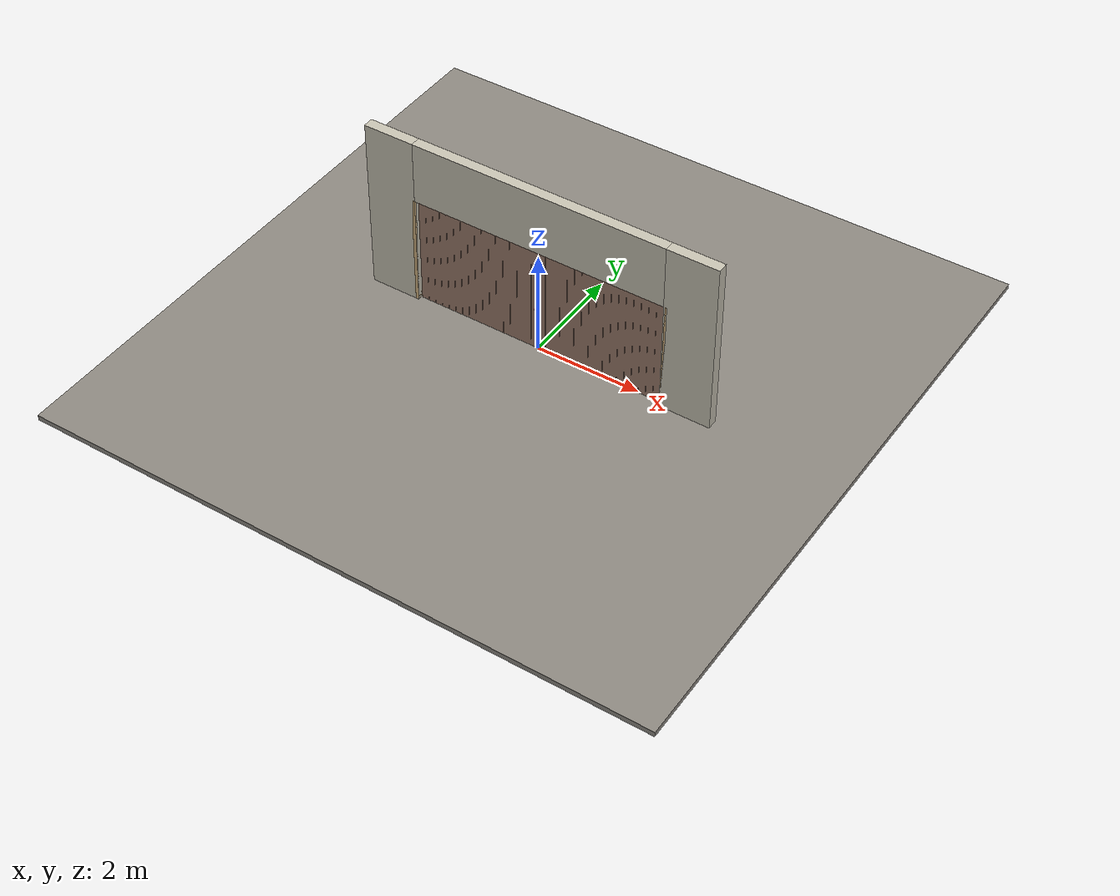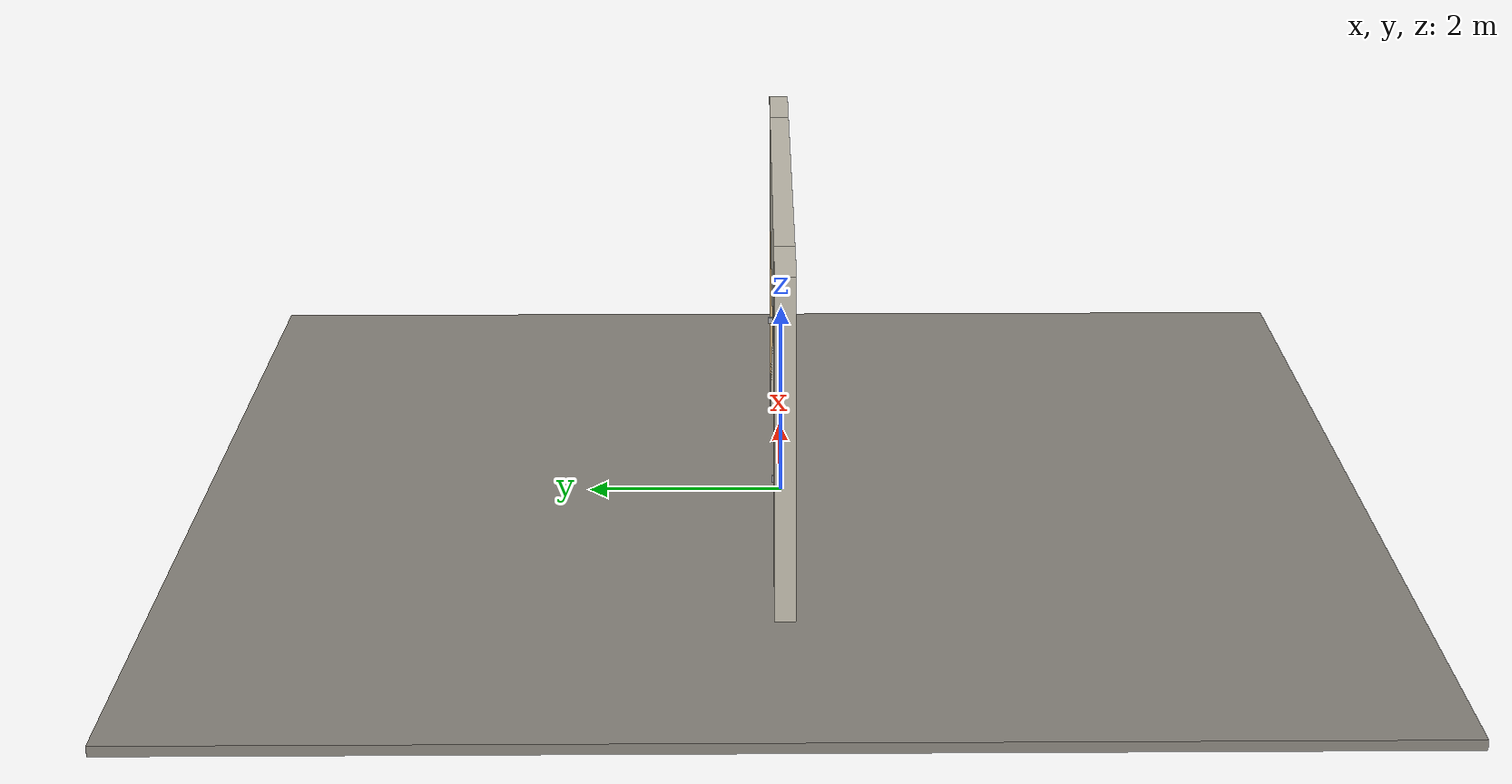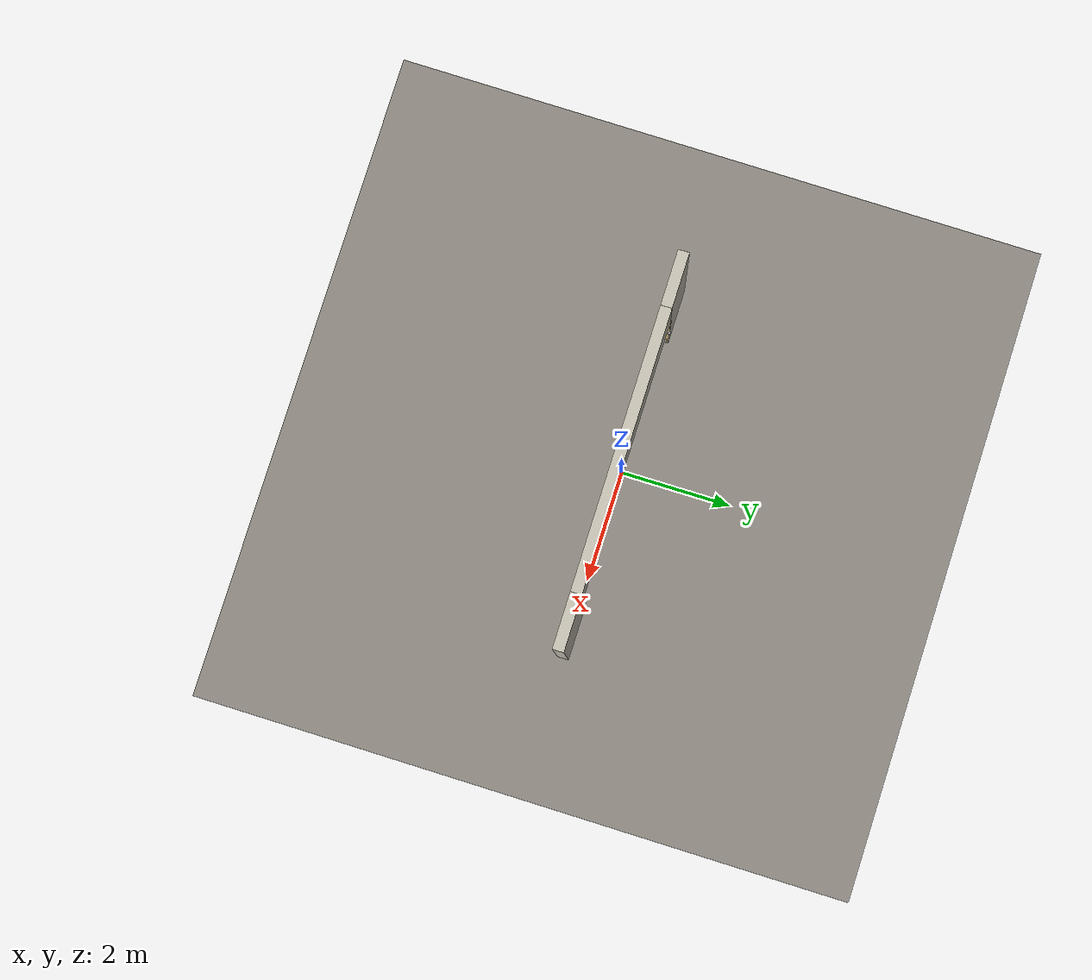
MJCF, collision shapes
<?xml version="1.0" ?>
<mujoco model="db0339_garage_tiltup_full">
  <compiler angle="radian" meshdir="../../hardware" texturedir="../../textures" autolimits="true" inertiafromgeom="false"/>
  <option timestep="0.002" integrator="implicitfast" cone="elliptic" impratio="10" noslip_iterations="3">
    <flag multiccd="enable"/>
  </option>
  <size memory="16M"/>
  <default>
    <geom condim="4" solref="0.005 1" solimp="0.95 0.99 0.001"/>
    <joint solreflimit="0.005 1" solimplimit="0.95 0.99 0.001"/>
    <tendon solreflimit="0.005 1"/>
    <equality solref="0.002 1"/>
  </default>
  <visual>
    <headlight ambient="0.4 0.4 0.4" diffuse="0.7 0.7 0.7" specular="0.2 0.2 0.2"/>
    <quality shadowsize="4096"/>
    <map znear="0.01" zfar="60"/>
  </visual>
  <asset>
    <mesh name="lever_01c630149d" file="lever_01c630149d.obj"/>
    <material name="mat_floor" rgba="0.55 0.53 0.5 1" specular="0.2" shininess="0.15" reflectance="0"/>
    <material name="mat_wall" rgba="0.78 0.76 0.7 1" specular="0.2" shininess="0.1" reflectance="0"/>
    <material name="mat_frame" rgba="0.82 0.7 0.5 1" specular="0.2" shininess="0.45" reflectance="0"/>
    <material name="mat_door" rgba="0.6 0.475 0.41 1" specular="0.2" shininess="0.4" reflectance="0"/>
    <material name="mat_door_brace" rgba="0.54 0.427 0.369 1" specular="0.2" shininess="0.2" reflectance="0"/>
    <material name="mat_track" rgba="0.65 0.66 0.68 1" specular="0.74" shininess="0.5" reflectance="0.36"/>
    <material name="mat_op_black_matte_metal" rgba="0.05 0.05 0.05 1" specular="0.38" shininess="0.3" reflectance="0.12"/>
    <material name="mat_trim" rgba="0.85 0.66 0.3 1" specular="0.8" shininess="0.75" reflectance="0.4"/>
    <texture name="skybox" type="skybox" builtin="gradient" rgb1="0.6 0.7 0.85" rgb2="0.9 0.92 0.95" width="256" height="256"/>
  </asset>
  <worldbody>
    <light name="sun" pos="1.5 -2.5 4" dir="-0.3 0.5 -0.8" directional="true" diffuse="0.8 0.8 0.8" specular="0.3 0.3 0.3" castshadow="true"/>
    <light name="fill" pos="-1.5 2.5 3" dir="0.3 -0.5 -0.7" directional="true" diffuse="0.35 0.35 0.4" castshadow="false"/>
    <camera name="robot_view" pos="0 -5.246875 2.559125" xyaxes="1 0 0 0 0.26963 0.962964" fovy="52"/>
    <camera name="far_view" pos="0 5.246875 2.559125" xyaxes="-1 0 0 0 -0.26963 0.962964" fovy="52"/>
    <camera name="iso" pos="3.987625 -4.407375 3.398625" xyaxes="0.741536 0.670913 0 -0.242917 0.268487 0.932151" fovy="46"/>
    <camera name="detail_handle" pos="0.2115 -1.1625 1.25" xyaxes="0.975133 0.221621 0 -0.065674 0.288965 0.955084" fovy="38"/>
    <geom name="floor" type="box" size="6 6 0.05" pos="0 0 -0.05" material="mat_floor" group="0" contype="1" conaffinity="1" friction="0.8 0.005 0.0001" density="2400"/>
    <geom name="wall_left" type="box" size="0.4875 0.1 1.69" pos="-2.9525 0 1.69" material="mat_wall" group="0" contype="1" conaffinity="1" friction="0.6 0.005 0.0001" density="800"/>
    <geom name="wall_right" type="box" size="0.4875 0.1 1.69" pos="2.9525 0 1.69" material="mat_wall" group="0" contype="1" conaffinity="1" friction="0.6 0.005 0.0001" density="800"/>
    <geom name="wall_header" type="box" size="2.465 0.1 0.6" pos="0 0 2.78" material="mat_wall" group="0" contype="1" conaffinity="1" friction="0.6 0.005 0.0001" density="800"/>
    <geom name="jamb_l" type="box" size="0.03 0.1 1.09" pos="-2.495 0 1.09" material="mat_frame" group="0" contype="1" conaffinity="1" friction="0.6 0.005 0.0001" density="400"/>
    <geom name="pivot_bracket_l" type="box" size="0.02 0.06 0.03" pos="-2.46 0.06 1.065" material="mat_track" group="1" contype="0" conaffinity="0" density="7850"/>
    <geom name="jamb_r" type="box" size="0.03 0.1 1.09" pos="2.495 0 1.09" material="mat_frame" group="0" contype="1" conaffinity="1" friction="0.6 0.005 0.0001" density="400"/>
    <geom name="pivot_bracket_r" type="box" size="0.02 0.06 0.03" pos="2.46 0.06 1.065" material="mat_track" group="1" contype="0" conaffinity="0" density="7850"/>
    <site name="approach_point" pos="0 -2 0" quat="1 0 0 0" size="0.05" rgba="0.2 0.9 0.2 0.5" group="4"/>
    <site name="goal_point" pos="0 2 0" quat="1 0 0 0" size="0.05" rgba="0.2 0.9 0.2 0.5" group="4"/>
    <site name="door_plane_center" pos="0 0 1.09" quat="1 0 0 0" size="0.02" rgba="0.2 0.9 0.2 0.5" group="4"/>
    <body name="door" pos="0 0 1.065">
      <inertial pos="0 0 0.01" mass="165.340282" quat="0 0 0.707107 0.707107" diaginertia="62.538834898 328.149658225 390.632690373"/>
      <joint name="door_hinge" type="hinge" axis="-1 0 0" limited="true" range="0 1.53589" damping="24.56618" frictionloss="10.848514" armature="0.5"/>
      <geom name="door_slab" type="box" size="2.44 0.0225 1.065" pos="0 0 0.01" material="mat_door" group="0" contype="1" conaffinity="1" friction="0.35 0.005 0.0001" density="1"/>
      <geom name="door_plank_gap_1" type="box" size="0.002 0.0235 1.055" pos="-2.296471 0 0.01" material="mat_door_brace" group="1" contype="0" conaffinity="0" density="1"/>
      <geom name="door_plank_gap_2" type="box" size="0.002 0.0235 1.055" pos="-2.152941 0 0.01" material="mat_door_brace" group="1" contype="0" conaffinity="0" density="1"/>
      <geom name="door_plank_gap_3" type="box" size="0.002 0.0235 1.055" pos="-2.009412 0 0.01" material="mat_door_brace" group="1" contype="0" conaffinity="0" density="1"/>
      <geom name="door_plank_gap_4" type="box" size="0.002 0.0235 1.055" pos="-1.865882 0 0.01" material="mat_door_brace" group="1" contype="0" conaffinity="0" density="1"/>
      <geom name="door_plank_gap_5" type="box" size="0.002 0.0235 1.055" pos="-1.722353 0 0.01" material="mat_door_brace" group="1" contype="0" conaffinity="0" density="1"/>
      <geom name="door_plank_gap_6" type="box" size="0.002 0.0235 1.055" pos="-1.578824 0 0.01" material="mat_door_brace" group="1" contype="0" conaffinity="0" density="1"/>
      <geom name="door_plank_gap_7" type="box" size="0.002 0.0235 1.055" pos="-1.435294 0 0.01" material="mat_door_brace" group="1" contype="0" conaffinity="0" density="1"/>
      <geom name="door_plank_gap_8" type="box" size="0.002 0.0235 1.055" pos="-1.291765 0 0.01" material="mat_door_brace" group="1" contype="0" conaffinity="0" density="1"/>
      <geom name="door_plank_gap_9" type="box" size="0.002 0.0235 1.055" pos="-1.148235 0 0.01" material="mat_door_brace" group="1" contype="0" conaffinity="0" density="1"/>
      <geom name="door_plank_gap_10" type="box" size="0.002 0.0235 1.055" pos="-1.004706 0 0.01" material="mat_door_brace" group="1" contype="0" conaffinity="0" density="1"/>
      <geom name="door_plank_gap_11" type="box" size="0.002 0.0235 1.055" pos="-0.861176 0 0.01" material="mat_door_brace" group="1" contype="0" conaffinity="0" density="1"/>
      <geom name="door_plank_gap_12" type="box" size="0.002 0.0235 1.055" pos="-0.717647 0 0.01" material="mat_door_brace" group="1" contype="0" conaffinity="0" density="1"/>
      <geom name="door_plank_gap_13" type="box" size="0.002 0.0235 1.055" pos="-0.574118 0 0.01" material="mat_door_brace" group="1" contype="0" conaffinity="0" density="1"/>
      <geom name="door_plank_gap_14" type="box" size="0.002 0.0235 1.055" pos="-0.430588 0 0.01" material="mat_door_brace" group="1" contype="0" conaffinity="0" density="1"/>
      <geom name="door_plank_gap_15" type="box" size="0.002 0.0235 1.055" pos="-0.287059 0 0.01" material="mat_door_brace" group="1" contype="0" conaffinity="0" density="1"/>
      <geom name="door_plank_gap_16" type="box" size="0.002 0.0235 1.055" pos="-0.143529 0 0.01" material="mat_door_brace" group="1" contype="0" conaffinity="0" density="1"/>
      <geom name="door_plank_gap_17" type="box" size="0.002 0.0235 1.055" pos="0 0 0.01" material="mat_door_brace" group="1" contype="0" conaffinity="0" density="1"/>
      <geom name="door_plank_gap_18" type="box" size="0.002 0.0235 1.055" pos="0.143529 0 0.01" material="mat_door_brace" group="1" contype="0" conaffinity="0" density="1"/>
      <geom name="door_plank_gap_19" type="box" size="0.002 0.0235 1.055" pos="0.287059 0 0.01" material="mat_door_brace" group="1" contype="0" conaffinity="0" density="1"/>
      <geom name="door_plank_gap_20" type="box" size="0.002 0.0235 1.055" pos="0.430588 0 0.01" material="mat_door_brace" group="1" contype="0" conaffinity="0" density="1"/>
      <geom name="door_plank_gap_21" type="box" size="0.002 0.0235 1.055" pos="0.574118 0 0.01" material="mat_door_brace" group="1" contype="0" conaffinity="0" density="1"/>
      <geom name="door_plank_gap_22" type="box" size="0.002 0.0235 1.055" pos="0.717647 0 0.01" material="mat_door_brace" group="1" contype="0" conaffinity="0" density="1"/>
      <geom name="door_plank_gap_23" type="box" size="0.002 0.0235 1.055" pos="0.861176 0 0.01" material="mat_door_brace" group="1" contype="0" conaffinity="0" density="1"/>
      <geom name="door_plank_gap_24" type="box" size="0.002 0.0235 1.055" pos="1.004706 0 0.01" material="mat_door_brace" group="1" contype="0" conaffinity="0" density="1"/>
      <geom name="door_plank_gap_25" type="box" size="0.002 0.0235 1.055" pos="1.148235 0 0.01" material="mat_door_brace" group="1" contype="0" conaffinity="0" density="1"/>
      <geom name="door_plank_gap_26" type="box" size="0.002 0.0235 1.055" pos="1.291765 0 0.01" material="mat_door_brace" group="1" contype="0" conaffinity="0" density="1"/>
      <geom name="door_plank_gap_27" type="box" size="0.002 0.0235 1.055" pos="1.435294 0 0.01" material="mat_door_brace" group="1" contype="0" conaffinity="0" density="1"/>
      <geom name="door_plank_gap_28" type="box" size="0.002 0.0235 1.055" pos="1.578824 0 0.01" material="mat_door_brace" group="1" contype="0" conaffinity="0" density="1"/>
      <geom name="door_plank_gap_29" type="box" size="0.002 0.0235 1.055" pos="1.722353 0 0.01" material="mat_door_brace" group="1" contype="0" conaffinity="0" density="1"/>
      <geom name="door_plank_gap_30" type="box" size="0.002 0.0235 1.055" pos="1.865882 0 0.01" material="mat_door_brace" group="1" contype="0" conaffinity="0" density="1"/>
      <geom name="door_plank_gap_31" type="box" size="0.002 0.0235 1.055" pos="2.009412 0 0.01" material="mat_door_brace" group="1" contype="0" conaffinity="0" density="1"/>
      <geom name="door_plank_gap_32" type="box" size="0.002 0.0235 1.055" pos="2.152941 0 0.01" material="mat_door_brace" group="1" contype="0" conaffinity="0" density="1"/>
      <geom name="door_plank_gap_33" type="box" size="0.002 0.0235 1.055" pos="2.296471 0 0.01" material="mat_door_brace" group="1" contype="0" conaffinity="0" density="1"/>
      <body name="t_handle" pos="0 0 -0.165">
        <inertial pos="0 -0.043758 0" mass="0.321518" quat="0.707107 0 0 -0.707107" diaginertia="0.000208692 0.000223196 0.000404264"/>
        <joint name="t_handle_hinge" type="hinge" axis="0 -1 0" limited="true" range="0 1.5708" damping="0.127804" frictionloss="0.028" stiffness="0.4" springref="-0.75" armature="0.01"/>
        <geom name="t_handle_spindle" type="cylinder" size="0.006 0.0305" pos="0 0 0" quat="0.707107 -0.707107 0 0" material="mat_op_black_matte_metal" group="1" contype="0" conaffinity="0" density="7850"/>
        <geom name="t_handle_t_n" type="mesh" mesh="lever_01c630149d" pos="0 -0.0225 0" quat="0.707107 0.707107 0 0" material="mat_op_black_matte_metal" group="1" contype="0" conaffinity="0" density="3000"/>
        <geom name="t_handle_t_col_n" type="box" size="0.055 0.008 0.008" pos="0 -0.0625 0" material="mat_op_black_matte_metal" group="3" contype="1" conaffinity="1" rgba="0.8 0.3 0.3 0.25" friction="0.6 0.005 0.0001" density="3000"/>
        <geom name="t_handle_cylinder_n" type="cylinder" size="0.0085 0.004" pos="0 -0.0725 0" quat="0.707107 -0.707107 0 0" material="mat_trim" group="1" contype="0" conaffinity="0" density="7100"/>
        <site name="t_handle_grip_n" pos="-0.0385 -0.0625 0" quat="1 0 0 0" size="0.012" rgba="0.2 0.9 0.2 0.5" group="4"/>
      </body>
    </body>
  </worldbody>
  <sensor>
    <jointpos name="door_hinge_pos" joint="door_hinge"/>
    <jointvel name="door_hinge_vel" joint="door_hinge"/>
    <jointpos name="t_handle_hinge_pos" joint="t_handle_hinge"/>
    <jointvel name="t_handle_hinge_vel" joint="t_handle_hinge"/>
  </sensor>
</mujoco>
